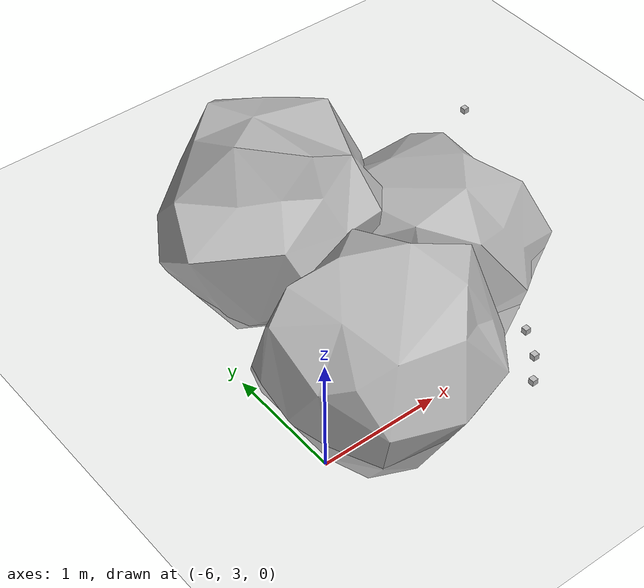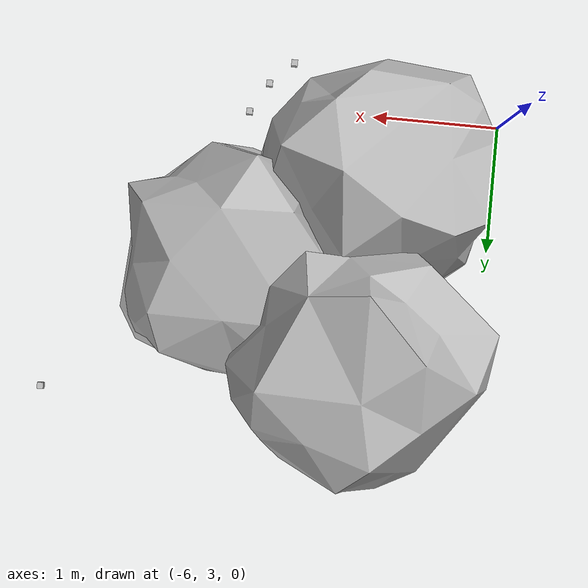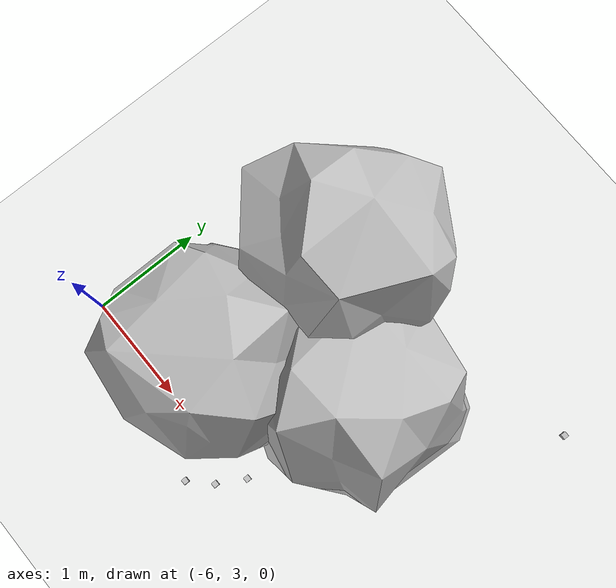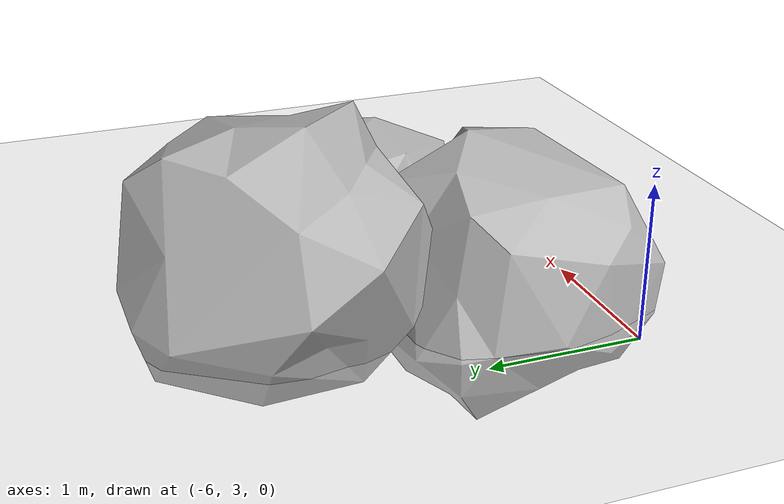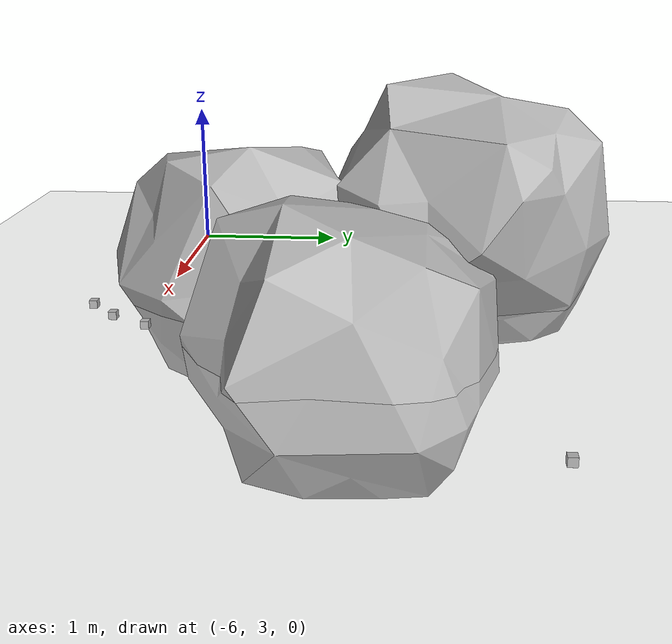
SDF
<sdf version="1.6">
 <world name="default">
  <model name="boulder1">
   <link name="link_0">
    <inertial>
     <mass>1</mass>
     <inertia>
      <ixx>0.166667</ixx>
      <ixy>0</ixy>
      <ixz>0</ixz>
      <iyy>0.166667</iyy>
      <iyz>0</iyz>
      <izz>0.166667</izz>
     </inertia>
    </inertial>
    <visual name="visual">
     <geometry><mesh><uri>model://boulder1/boulder1.dae</uri><scale>1 1 1</scale></mesh></geometry>
     <material>
      <lighting>1</lighting>
      <script><uri>model://boulder1</uri><name>boulder1/Diffuse</name></script>
     </material>
    </visual>
    <collision name="collision">
     <geometry><mesh><uri>model://boulder1/boulder1.dae</uri><scale>1 1 1</scale></mesh></geometry>
     <surface>
      <friction>
       <ode><mu>1</mu><mu2>1</mu2><fdir1>0 0 0</fdir1><slip1>0</slip1><slip2>0</slip2></ode>
       <torsional>
        <coefficient>1</coefficient>
        <patch_radius>0</patch_radius>
        <surface_radius>0</surface_radius>
        <use_patch_radius>1</use_patch_radius>
        <ode><slip>0</slip></ode>
       </torsional>
      </friction>
      <bounce><restitution_coefficient>0</restitution_coefficient><threshold>1e+06</threshold></bounce>
      <contact>
       <collide_without_contact>0</collide_without_contact>
       <collide_without_contact_bitmask>1</collide_without_contact_bitmask>
       <collide_bitmask>1</collide_bitmask>
       <ode>
        <soft_cfm>0</soft_cfm>
        <soft_erp>0.2</soft_erp>
        <kp>1e+13</kp>
        <kd>1</kd>
        <max_vel>0.01</max_vel>
        <min_depth>0</min_depth>
       </ode>
       <bullet>
        <split_impulse>1</split_impulse>
        <split_impulse_penetration_threshold>-0.01</split_impulse_penetration_threshold>
        <soft_cfm>0</soft_cfm>
        <soft_erp>0.2</soft_erp>
        <kp>1e+13</kp>
        <kd>1</kd>
       </bullet>
      </contact>
     </surface>
    </collision>
   </link>
   <static>1</static>
   <pose>-4.50183 4.31712 0 0 0 -1.7041</pose>
  </model>
  <model name="boulder1_2">
   <link name="link_0">
    <inertial>
     <mass>1</mass>
     <inertia>
      <ixx>0.166667</ixx>
      <ixy>0</ixy>
      <ixz>0</ixz>
      <iyy>0.166667</iyy>
      <iyz>0</iyz>
      <izz>0.166667</izz>
     </inertia>
    </inertial>
    <visual name="visual">
     <geometry><mesh><uri>model://boulder1/boulder1.dae</uri><scale>1 1 1</scale></mesh></geometry>
     <material>
      <lighting>1</lighting>
      <script><uri>model://boulder1</uri><name>boulder1/Diffuse</name></script>
     </material>
    </visual>
    <collision name="collision">
     <geometry><mesh><uri>model://boulder1/boulder1.dae</uri><scale>1 1 1</scale></mesh></geometry>
     <surface>
      <friction>
       <ode><mu>1</mu><mu2>1</mu2><fdir1>0 0 0</fdir1><slip1>0</slip1><slip2>0</slip2></ode>
       <torsional>
        <coefficient>1</coefficient>
        <patch_radius>0</patch_radius>
        <surface_radius>0</surface_radius>
        <use_patch_radius>1</use_patch_radius>
        <ode><slip>0</slip></ode>
       </torsional>
      </friction>
      <bounce><restitution_coefficient>0</restitution_coefficient><threshold>1e+06</threshold></bounce>
      <contact>
       <collide_without_contact>0</collide_without_contact>
       <collide_without_contact_bitmask>1</collide_without_contact_bitmask>
       <collide_bitmask>1</collide_bitmask>
       <ode>
        <soft_cfm>0</soft_cfm>
        <soft_erp>0.2</soft_erp>
        <kp>1e+13</kp>
        <kd>1</kd>
        <max_vel>0.01</max_vel>
        <min_depth>0</min_depth>
       </ode>
       <bullet>
        <split_impulse>1</split_impulse>
        <split_impulse_penetration_threshold>-0.01</split_impulse_penetration_threshold>
        <soft_cfm>0</soft_cfm>
        <soft_erp>0.2</soft_erp>
        <kp>1e+13</kp>
        <kd>1</kd>
       </bullet>
      </contact>
     </surface>
    </collision>
   </link>
   <static>1</static>
   <pose>-5.05483 2.9436 0.147332 0 -0 0</pose>
  </model>
  <model name="boulder1_1_clone_0">
   <link name="link_0">
    <inertial>
     <mass>1</mass>
     <inertia>
      <ixx>0.166667</ixx>
      <ixy>0</ixy>
      <ixz>0</ixz>
      <iyy>0.166667</iyy>
      <iyz>0</iyz>
      <izz>0.166667</izz>
     </inertia>
    </inertial>
    <visual name="visual">
     <geometry><mesh><uri>model://boulder1/boulder1.dae</uri><scale>1 1 1</scale></mesh></geometry>
     <material>
      <lighting>1</lighting>
      <script><uri>model://boulder1</uri><name>boulder1/Diffuse</name></script>
     </material>
    </visual>
    <collision name="collision">
     <geometry><mesh><uri>model://boulder1/boulder1.dae</uri><scale>1 1 1</scale></mesh></geometry>
     <surface>
      <friction>
       <ode><mu>1</mu><mu2>1</mu2><fdir1>0 0 0</fdir1><slip1>0</slip1><slip2>0</slip2></ode>
       <torsional>
        <coefficient>1</coefficient>
        <patch_radius>0</patch_radius>
        <surface_radius>0</surface_radius>
        <use_patch_radius>1</use_patch_radius>
        <ode><slip>0</slip></ode>
       </torsional>
      </friction>
      <bounce><restitution_coefficient>0</restitution_coefficient><threshold>1e+06</threshold></bounce>
      <contact>
       <collide_without_contact>0</collide_without_contact>
       <collide_without_contact_bitmask>1</collide_without_contact_bitmask>
       <collide_bitmask>1</collide_bitmask>
       <ode>
        <soft_cfm>0</soft_cfm>
        <soft_erp>0.2</soft_erp>
        <kp>1e+13</kp>
        <kd>1</kd>
        <max_vel>0.01</max_vel>
        <min_depth>0</min_depth>
       </ode>
       <bullet>
        <split_impulse>1</split_impulse>
        <split_impulse_penetration_threshold>-0.01</split_impulse_penetration_threshold>
        <soft_cfm>0</soft_cfm>
        <soft_erp>0.2</soft_erp>
        <kp>1e+13</kp>
        <kd>1</kd>
       </bullet>
      </contact>
     </surface>
    </collision>
   </link>
   <static>1</static>
   <pose>-5.24973 5.09632 0 1.11464 -0 -2.10771</pose>
  </model>
  <model name="ground_plane">
   <static>1</static>
   <link name="link">
    <collision name="collision">
     <geometry><plane><normal>0 0 1</normal><size>100 100</size></plane></geometry>
     <surface><friction><ode><mu>100</mu><mu2>50</mu2></ode></friction></surface>
    </collision>
    <visual name="visual">
     <cast_shadows>0</cast_shadows>
     <geometry><plane><normal>0 0 1</normal><size>100 100</size></plane></geometry>
     <material>
      <script><uri>file://media/materials/scripts/gazebo.material</uri><name>Gazebo/Grey</name></script>
     </material>
    </visual>
   </link>
  </model>
  <model name="at0_55">
   <static>0</static>
   <link name="link">
    <inertial>
     <mass>0.01</mass>
     <inertia><ixx>4e-05</ixx><ixy>0</ixy><ixz>0</ixz><iyy>4e-05</iyy><iyz>0</iyz><izz>4e-05</izz></inertia>
    </inertial>
    <visual name="visual">
     <geometry><box><size>0.05 0.05 0.05</size></box></geometry>
     <material>
      <script>
       <uri>model://at0/materials/scripts</uri>
       <uri>model://at0/materials/textures</uri>
       <name>at0/Diffuse</name>
      </script>
     </material>
    </visual>
    <collision name="collision">
     <geometry><box><size>0.05 0.05 0.05</size></box></geometry>
     <surface><friction><ode><mu>0.8</mu><mu2>0.7</mu2></ode></friction></surface>
    </collision>
   </link>
   <pose>-2.56579 5.37796 0.045 0 -0 0</pose>
  </model>
  <model name="at0_76">
   <static>0</static>
   <link name="link">
    <inertial>
     <mass>0.01</mass>
     <inertia><ixx>4e-05</ixx><ixy>0</ixy><ixz>0</ixz><iyy>4e-05</iyy><iyz>0</iyz><izz>4e-05</izz></inertia>
    </inertial>
    <visual name="visual">
     <geometry><box><size>0.05 0.05 0.05</size></box></geometry>
     <material>
      <script>
       <uri>model://at0/materials/scripts</uri>
       <uri>model://at0/materials/textures</uri>
       <name>at0/Diffuse</name>
      </script>
     </material>
    </visual>
    <collision name="collision">
     <geometry><box><size>0.05 0.05 0.05</size></box></geometry>
     <surface><friction><ode><mu>0.8</mu><mu2>0.7</mu2></ode></friction></surface>
    </collision>
   </link>
   <pose>-4.33232 2.63554 0.045 0 -0 0</pose>
  </model>
  <model name="at0_77">
   <static>0</static>
   <link name="link">
    <inertial>
     <mass>0.01</mass>
     <inertia><ixx>4e-05</ixx><ixy>0</ixy><ixz>0</ixz><iyy>4e-05</iyy><iyz>0</iyz><izz>4e-05</izz></inertia>
    </inertial>
    <visual name="visual">
     <geometry><box><size>0.05 0.05 0.05</size></box></geometry>
     <material>
      <script>
       <uri>model://at0/materials/scripts</uri>
       <uri>model://at0/materials/textures</uri>
       <name>at0/Diffuse</name>
      </script>
     </material>
    </visual>
    <collision name="collision">
     <geometry><box><size>0.05 0.05 0.05</size></box></geometry>
     <surface><friction><ode><mu>0.8</mu><mu2>0.7</mu2></ode></friction></surface>
    </collision>
   </link>
   <pose>-4.1491 2.81536 0.045 0 -0 0</pose>
  </model>
  <model name="at0_78">
   <static>0</static>
   <link name="link">
    <inertial>
     <mass>0.01</mass>
     <inertia><ixx>4e-05</ixx><ixy>0</ixy><ixz>0</ixz><iyy>4e-05</iyy><iyz>0</iyz><izz>4e-05</izz></inertia>
    </inertial>
    <visual name="visual">
     <geometry><box><size>0.05 0.05 0.05</size></box></geometry>
     <material>
      <script>
       <uri>model://at0/materials/scripts</uri>
       <uri>model://at0/materials/textures</uri>
       <name>at0/Diffuse</name>
      </script>
     </material>
    </visual>
    <collision name="collision">
     <geometry><box><size>0.05 0.05 0.05</size></box></geometry>
     <surface><friction><ode><mu>0.8</mu><mu2>0.7</mu2></ode></friction></surface>
    </collision>
   </link>
   <pose>-4.01136 3.05335 0.045 0 -0 0</pose>
  </model>
 </world>
</sdf>
